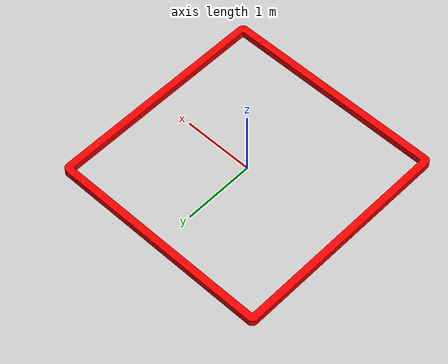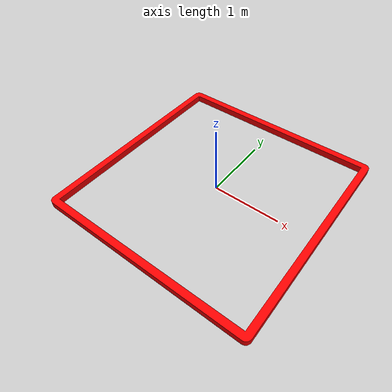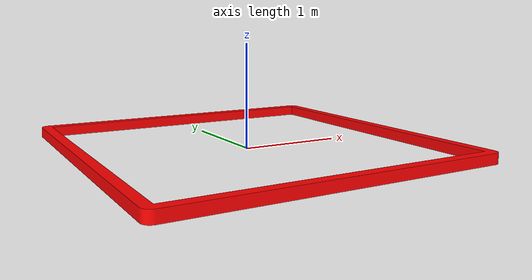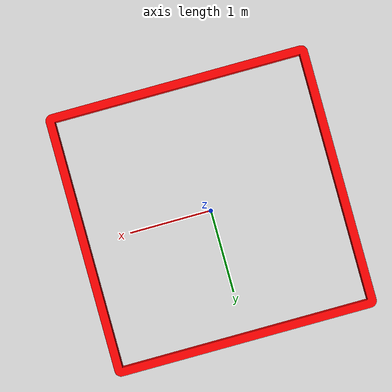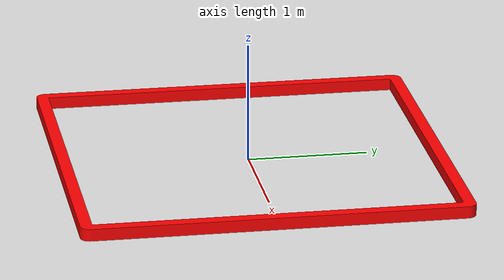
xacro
<?xml version="1.0"?>
<robot name="zona_peligro">

     <link name="peligro">
      <inertial>
        <mass value="0.01895747" />
        <origin rpy="0.0 0.0 0.0" xyz="0.0 0.0 0.0" />
        <inertia ixx="0.00000280" ixy="0.0" ixz="0.0" iyy="0.00000280" iyz="0.0" izz="0.00000024" />
      </inertial>
      <collision>
        <origin rpy="0.0 0.0 0.0" xyz="0.0 0.0 0.0" />
        <geometry>
          <mesh filename="package://proyecto_intermedio_robotica/meshes/peligro.stl" scale="0.1 0.1 0.1"/>
        </geometry>
      </collision>
      <visual>
        <origin rpy="0.0 0.0 0.0" xyz="0.0 0.0 0.0" />
        <geometry>
          <mesh filename="package://proyecto_intermedio_robotica/meshes/peligro.stl" scale="0.1 0.1 0.1"/>
        </geometry>
        <material name="red">
          <color rgba="1.0 0.0 0.0 1.0"/>
        </material>
      </visual>
    </link>
    <gazebo reference="zona_peligro">
      <material>Gazebo/ZincYellow</material>
    </gazebo>

</robot>
